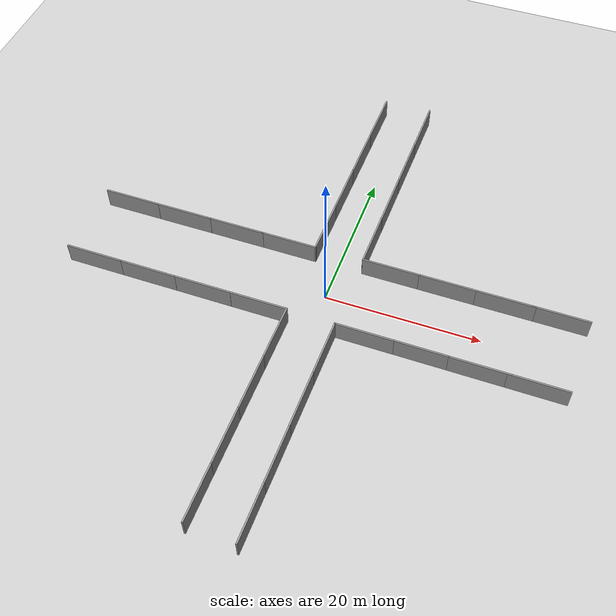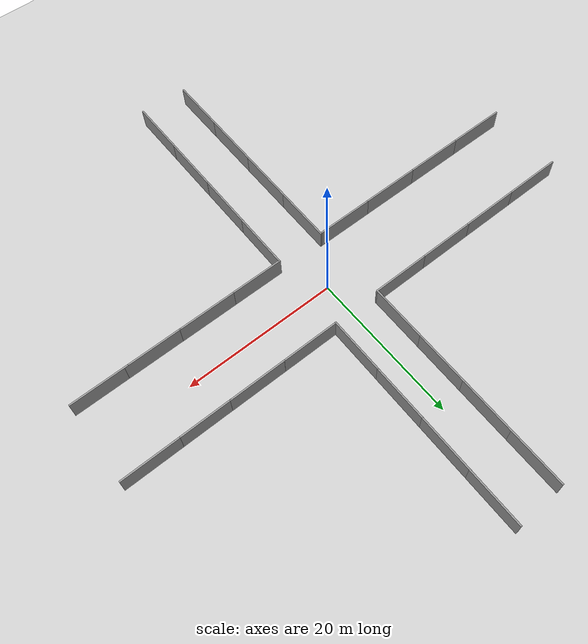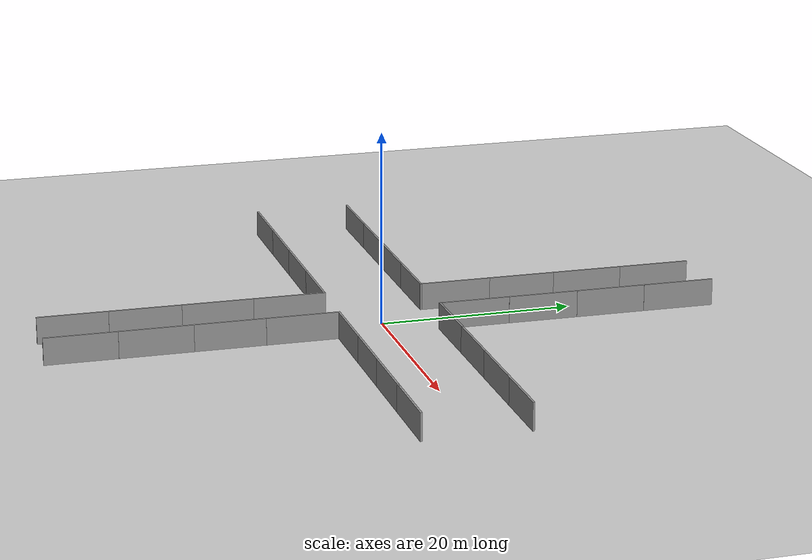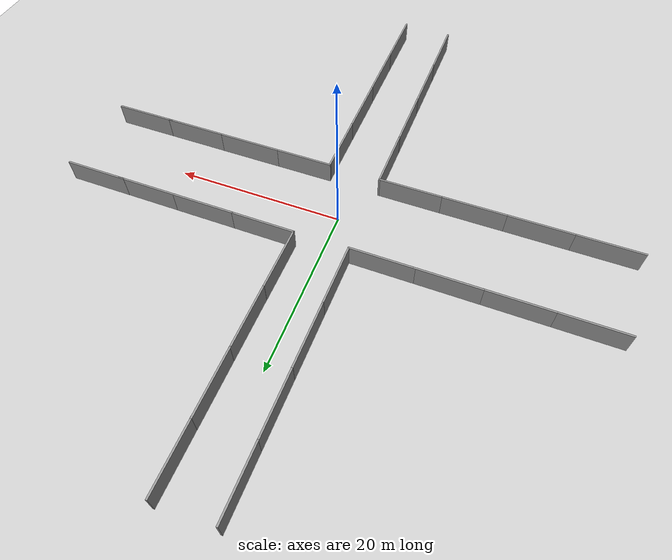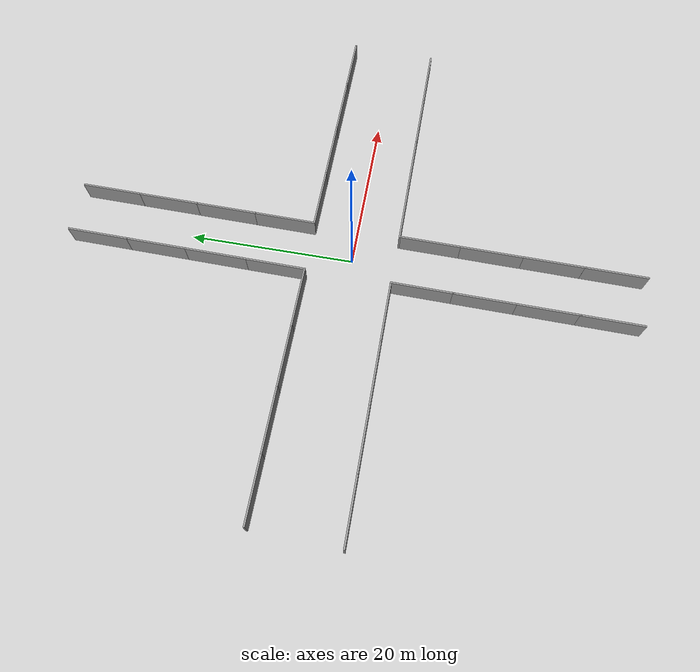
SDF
<sdf version="1.7">
 <world name="default">
  <light name="sun" type="directional">
   <pose>0 0 10 0 -0 0</pose>
   <diffuse>0.8 0.8 0.8 1</diffuse>
   <specular>0.2 0.2 0.2 1</specular>
   <attenuation>
    <range>1000</range>
    <constant>0.9</constant>
    <linear>0.01</linear>
    <quadratic>0.001</quadratic>
   </attenuation>
   <direction>-0.5 0.1 -0.9</direction>
   <spot><inner_angle>0</inner_angle><outer_angle>0</outer_angle><falloff>0</falloff></spot>
  </light>
  <model name="ground_plane">
   <static>1</static>
   <link name="link">
    <collision name="collision">
     <geometry><plane><normal>0 0 1</normal><size>100 100</size></plane></geometry>
     <surface>
      <contact><collide_bitmask>65535</collide_bitmask></contact>
      <friction><ode><mu>100</mu><mu2>50</mu2></ode></friction>
     </surface>
    </collision>
    <visual name="visual">
     <cast_shadows>0</cast_shadows>
     <geometry><plane><normal>0 0 1</normal><size>100 100</size></plane></geometry>
     <material>
      <script><uri>file://media/materials/scripts/gazebo.material</uri><name>Gazebo/Grey</name></script>
     </material>
    </visual>
   </link>
  </model>
  <gravity>0 0 -9.8</gravity>
  <magnetic_field>6e-06 2.3e-05 -4.2e-05</magnetic_field>
  <atmosphere type="adiabatic"/>
  <physics type="ode">
   <max_step_size>0.001</max_step_size>
   <real_time_factor>1</real_time_factor>
   <real_time_update_rate>1000</real_time_update_rate>
  </physics>
  <scene><ambient>0.4 0.4 0.4 1</ambient><background>0.7 0.7 0.7 1</background><shadows>1</shadows></scene>
  <spherical_coordinates>
   <surface_model>EARTH_WGS84</surface_model>
   <latitude_deg>0</latitude_deg>
   <longitude_deg>0</longitude_deg>
   <elevation>0</elevation>
   <heading_deg>0</heading_deg>
  </spherical_coordinates>
  <model name="grey_wall">
   <static>1</static>
   <link name="link">
    <pose>0 0 1.4 0 -0 0</pose>
    <collision name="collision"><geometry><box><size>7.5 0.2 2.8</size></box></geometry></collision>
    <visual name="visual">
     <cast_shadows>0</cast_shadows>
     <geometry><box><size>7.5 0.2 2.8</size></box></geometry>
     <material>
      <script>
       <uri>model://grey_wall/materials/scripts</uri>
       <uri>model://grey_wall/materials/textures</uri>
       <name>vrc/grey_wall</name>
      </script>
     </material>
    </visual>
   </link>
   <pose>6.80845 5.23595 0 0 -0 0</pose>
  </model>
  <model name="grey_wall_clone">
   <static>1</static>
   <link name="link">
    <pose>0 0 1.4 0 -0 0</pose>
    <collision name="collision"><geometry><box><size>7.5 0.2 2.8</size></box></geometry></collision>
    <visual name="visual">
     <cast_shadows>0</cast_shadows>
     <geometry><box><size>7.5 0.2 2.8</size></box></geometry>
     <material>
      <script>
       <uri>model://grey_wall/materials/scripts</uri>
       <uri>model://grey_wall/materials/textures</uri>
       <name>vrc/grey_wall</name>
      </script>
     </material>
    </visual>
   </link>
   <pose>14.1866 5.23301 0 0 -0 0</pose>
  </model>
  <model name="grey_wall_clone_0">
   <static>1</static>
   <link name="link">
    <pose>0 0 1.4 0 -0 0</pose>
    <collision name="collision"><geometry><box><size>7.5 0.2 2.8</size></box></geometry></collision>
    <visual name="visual">
     <cast_shadows>0</cast_shadows>
     <geometry><box><size>7.5 0.2 2.8</size></box></geometry>
     <material>
      <script>
       <uri>model://grey_wall/materials/scripts</uri>
       <uri>model://grey_wall/materials/textures</uri>
       <name>vrc/grey_wall</name>
      </script>
     </material>
    </visual>
   </link>
   <pose>21.4468 5.22567 0 0 -0 0</pose>
  </model>
  <model name="grey_wall_clone_1">
   <static>1</static>
   <link name="link">
    <pose>0 0 1.4 0 -0 0</pose>
    <collision name="collision"><geometry><box><size>7.5 0.2 2.8</size></box></geometry></collision>
    <visual name="visual">
     <cast_shadows>0</cast_shadows>
     <geometry><box><size>7.5 0.2 2.8</size></box></geometry>
     <material>
      <script>
       <uri>model://grey_wall/materials/scripts</uri>
       <uri>model://grey_wall/materials/textures</uri>
       <name>vrc/grey_wall</name>
      </script>
     </material>
    </visual>
   </link>
   <pose>6.69688 -5.26146 0 0 -0 0</pose>
  </model>
  <model name="grey_wall_clone_2">
   <static>1</static>
   <link name="link">
    <pose>0 0 1.4 0 -0 0</pose>
    <collision name="collision"><geometry><box><size>7.5 0.2 2.8</size></box></geometry></collision>
    <visual name="visual">
     <cast_shadows>0</cast_shadows>
     <geometry><box><size>7.5 0.2 2.8</size></box></geometry>
     <material>
      <script>
       <uri>model://grey_wall/materials/scripts</uri>
       <uri>model://grey_wall/materials/textures</uri>
       <name>vrc/grey_wall</name>
      </script>
     </material>
    </visual>
   </link>
   <pose>13.519 -5.25643 0 0 -0 0</pose>
  </model>
  <model name="grey_wall_clone_3">
   <static>1</static>
   <link name="link">
    <pose>0 0 1.4 0 -0 0</pose>
    <collision name="collision"><geometry><box><size>7.5 0.2 2.8</size></box></geometry></collision>
    <visual name="visual">
     <cast_shadows>0</cast_shadows>
     <geometry><box><size>7.5 0.2 2.8</size></box></geometry>
     <material>
      <script>
       <uri>model://grey_wall/materials/scripts</uri>
       <uri>model://grey_wall/materials/textures</uri>
       <name>vrc/grey_wall</name>
      </script>
     </material>
    </visual>
   </link>
   <pose>20.8261 -5.26477 0 0 -0 0</pose>
  </model>
  <model name="grey_wall_clone_4">
   <static>1</static>
   <link name="link">
    <pose>0 0 1.4 0 -0 0</pose>
    <collision name="collision"><geometry><box><size>7.5 0.2 2.8</size></box></geometry></collision>
    <visual name="visual">
     <cast_shadows>0</cast_shadows>
     <geometry><box><size>7.5 0.2 2.8</size></box></geometry>
     <material>
      <script>
       <uri>model://grey_wall/materials/scripts</uri>
       <uri>model://grey_wall/materials/textures</uri>
       <name>vrc/grey_wall</name>
      </script>
     </material>
    </visual>
   </link>
   <pose>3.02003 -8.96047 0 0 -0 1.56079</pose>
  </model>
  <model name="grey_wall_clone_4_clone">
   <static>1</static>
   <link name="link">
    <pose>0 0 1.4 0 -0 0</pose>
    <collision name="collision"><geometry><box><size>7.5 0.2 2.8</size></box></geometry></collision>
    <visual name="visual">
     <cast_shadows>0</cast_shadows>
     <geometry><box><size>7.5 0.2 2.8</size></box></geometry>
     <material>
      <script>
       <uri>model://grey_wall/materials/scripts</uri>
       <uri>model://grey_wall/materials/textures</uri>
       <name>vrc/grey_wall</name>
      </script>
     </material>
    </visual>
   </link>
   <pose>2.94297 -16.3707 0 0 -0 1.56079</pose>
  </model>
  <model name="grey_wall_clone_4_clone_0">
   <static>1</static>
   <link name="link">
    <pose>0 0 1.4 0 -0 0</pose>
    <collision name="collision"><geometry><box><size>7.5 0.2 2.8</size></box></geometry></collision>
    <visual name="visual">
     <cast_shadows>0</cast_shadows>
     <geometry><box><size>7.5 0.2 2.8</size></box></geometry>
     <material>
      <script>
       <uri>model://grey_wall/materials/scripts</uri>
       <uri>model://grey_wall/materials/textures</uri>
       <name>vrc/grey_wall</name>
      </script>
     </material>
    </visual>
   </link>
   <pose>2.87951 -23.7158 0 0 -0 1.56079</pose>
  </model>
  <model name="grey_wall_clone_4_clone_1">
   <static>1</static>
   <link name="link">
    <pose>0 0 1.4 0 -0 0</pose>
    <collision name="collision"><geometry><box><size>7.5 0.2 2.8</size></box></geometry></collision>
    <visual name="visual">
     <cast_shadows>0</cast_shadows>
     <geometry><box><size>7.5 0.2 2.8</size></box></geometry>
     <material>
      <script>
       <uri>model://grey_wall/materials/scripts</uri>
       <uri>model://grey_wall/materials/textures</uri>
       <name>vrc/grey_wall</name>
      </script>
     </material>
    </visual>
   </link>
   <pose>2.80142 -31.0909 0 0 -0 1.56079</pose>
  </model>
  <model name="grey_wall_clone_4_clone_2">
   <static>1</static>
   <link name="link">
    <pose>0 0 1.4 0 -0 0</pose>
    <collision name="collision"><geometry><box><size>7.5 0.2 2.8</size></box></geometry></collision>
    <visual name="visual">
     <cast_shadows>0</cast_shadows>
     <geometry><box><size>7.5 0.2 2.8</size></box></geometry>
     <material>
      <script>
       <uri>model://grey_wall/materials/scripts</uri>
       <uri>model://grey_wall/materials/textures</uri>
       <name>vrc/grey_wall</name>
      </script>
     </material>
    </visual>
   </link>
   <pose>3.17287 8.88911 0 0 -0 1.56079</pose>
  </model>
  <model name="grey_wall_clone_4_clone_3">
   <static>1</static>
   <link name="link">
    <pose>0 0 1.4 0 -0 0</pose>
    <collision name="collision"><geometry><box><size>7.5 0.2 2.8</size></box></geometry></collision>
    <visual name="visual">
     <cast_shadows>0</cast_shadows>
     <geometry><box><size>7.5 0.2 2.8</size></box></geometry>
     <material>
      <script>
       <uri>model://grey_wall/materials/scripts</uri>
       <uri>model://grey_wall/materials/textures</uri>
       <name>vrc/grey_wall</name>
      </script>
     </material>
    </visual>
   </link>
   <pose>3.2574 16.2734 0 0 -0 1.56079</pose>
  </model>
  <model name="grey_wall_clone_4_clone_4">
   <static>1</static>
   <link name="link">
    <pose>0 0 1.4 0 -0 0</pose>
    <collision name="collision"><geometry><box><size>7.5 0.2 2.8</size></box></geometry></collision>
    <visual name="visual">
     <cast_shadows>0</cast_shadows>
     <geometry><box><size>7.5 0.2 2.8</size></box></geometry>
     <material>
      <script>
       <uri>model://grey_wall/materials/scripts</uri>
       <uri>model://grey_wall/materials/textures</uri>
       <name>vrc/grey_wall</name>
      </script>
     </material>
    </visual>
   </link>
   <pose>3.33423 23.5562 0 0 -0 1.56079</pose>
  </model>
  <model name="grey_wall_clone_4_clone_5">
   <static>1</static>
   <link name="link">
    <pose>0 0 1.4 0 -0 0</pose>
    <collision name="collision"><geometry><box><size>7.5 0.2 2.8</size></box></geometry></collision>
    <visual name="visual">
     <cast_shadows>0</cast_shadows>
     <geometry><box><size>7.5 0.2 2.8</size></box></geometry>
     <material>
      <script>
       <uri>model://grey_wall/materials/scripts</uri>
       <uri>model://grey_wall/materials/textures</uri>
       <name>vrc/grey_wall</name>
      </script>
     </material>
    </visual>
   </link>
   <pose>3.4155 30.8283 0 0 -0 1.56079</pose>
  </model>
  <model name="grey_wall_clone_4_clone_6">
   <static>1</static>
   <link name="link">
    <pose>0 0 1.4 0 -0 0</pose>
    <collision name="collision"><geometry><box><size>7.5 0.2 2.8</size></box></geometry></collision>
    <visual name="visual">
     <cast_shadows>0</cast_shadows>
     <geometry><box><size>7.5 0.2 2.8</size></box></geometry>
     <material>
      <script>
       <uri>model://grey_wall/materials/scripts</uri>
       <uri>model://grey_wall/materials/textures</uri>
       <name>vrc/grey_wall</name>
      </script>
     </material>
    </visual>
   </link>
   <pose>-3.15343 8.74962 0 0 -0 1.56079</pose>
  </model>
  <model name="grey_wall_clone_4_clone_7">
   <static>1</static>
   <link name="link">
    <pose>0 0 1.4 0 -0 0</pose>
    <collision name="collision"><geometry><box><size>7.5 0.2 2.8</size></box></geometry></collision>
    <visual name="visual">
     <cast_shadows>0</cast_shadows>
     <geometry><box><size>7.5 0.2 2.8</size></box></geometry>
     <material>
      <script>
       <uri>model://grey_wall/materials/scripts</uri>
       <uri>model://grey_wall/materials/textures</uri>
       <name>vrc/grey_wall</name>
      </script>
     </material>
    </visual>
   </link>
   <pose>-3.08166 15.9727 0 0 -0 1.56079</pose>
  </model>
  <model name="grey_wall_clone_4_clone_8">
   <static>1</static>
   <link name="link">
    <pose>0 0 1.4 0 -0 0</pose>
    <collision name="collision"><geometry><box><size>7.5 0.2 2.8</size></box></geometry></collision>
    <visual name="visual">
     <cast_shadows>0</cast_shadows>
     <geometry><box><size>7.5 0.2 2.8</size></box></geometry>
     <material>
      <script>
       <uri>model://grey_wall/materials/scripts</uri>
       <uri>model://grey_wall/materials/textures</uri>
       <name>vrc/grey_wall</name>
      </script>
     </material>
    </visual>
   </link>
   <pose>-3.00818 23.2296 0 0 -0 1.56079</pose>
  </model>
  <model name="grey_wall_clone_4_clone_9">
   <static>1</static>
   <link name="link">
    <pose>0 0 1.4 0 -0 0</pose>
    <collision name="collision"><geometry><box><size>7.5 0.2 2.8</size></box></geometry></collision>
    <visual name="visual">
     <cast_shadows>0</cast_shadows>
     <geometry><box><size>7.5 0.2 2.8</size></box></geometry>
     <material>
      <script>
       <uri>model://grey_wall/materials/scripts</uri>
       <uri>model://grey_wall/materials/textures</uri>
       <name>vrc/grey_wall</name>
      </script>
     </material>
    </visual>
   </link>
   <pose>-2.93216 30.5916 0 0 -0 1.56079</pose>
  </model>
  <model name="grey_wall_clone_4_clone_10">
   <static>1</static>
   <link name="link">
    <pose>0 0 1.4 0 -0 0</pose>
    <collision name="collision"><geometry><box><size>7.5 0.2 2.8</size></box></geometry></collision>
    <visual name="visual">
     <cast_shadows>0</cast_shadows>
     <geometry><box><size>7.5 0.2 2.8</size></box></geometry>
     <material>
      <script>
       <uri>model://grey_wall/materials/scripts</uri>
       <uri>model://grey_wall/materials/textures</uri>
       <name>vrc/grey_wall</name>
      </script>
     </material>
    </visual>
   </link>
   <pose>-3.18334 -8.81888 0 0 -0 1.56079</pose>
  </model>
  <model name="grey_wall_clone_4_clone_11">
   <static>1</static>
   <link name="link">
    <pose>0 0 1.4 0 -0 0</pose>
    <collision name="collision"><geometry><box><size>7.5 0.2 2.8</size></box></geometry></collision>
    <visual name="visual">
     <cast_shadows>0</cast_shadows>
     <geometry><box><size>7.5 0.2 2.8</size></box></geometry>
     <material>
      <script>
       <uri>model://grey_wall/materials/scripts</uri>
       <uri>model://grey_wall/materials/textures</uri>
       <name>vrc/grey_wall</name>
      </script>
     </material>
    </visual>
   </link>
   <pose>-3.26156 -16.1615 0 0 -0 1.56079</pose>
  </model>
  <model name="grey_wall_clone_4_clone_12">
   <static>1</static>
   <link name="link">
    <pose>0 0 1.4 0 -0 0</pose>
    <collision name="collision"><geometry><box><size>7.5 0.2 2.8</size></box></geometry></collision>
    <visual name="visual">
     <cast_shadows>0</cast_shadows>
     <geometry><box><size>7.5 0.2 2.8</size></box></geometry>
     <material>
      <script>
       <uri>model://grey_wall/materials/scripts</uri>
       <uri>model://grey_wall/materials/textures</uri>
       <name>vrc/grey_wall</name>
      </script>
     </material>
    </visual>
   </link>
   <pose>-3.33675 -23.5853 0 0 -0 1.56079</pose>
  </model>
  <model name="grey_wall_clone_4_clone_13">
   <static>1</static>
   <link name="link">
    <pose>0 0 1.4 0 -0 0</pose>
    <collision name="collision"><geometry><box><size>7.5 0.2 2.8</size></box></geometry></collision>
    <visual name="visual">
     <cast_shadows>0</cast_shadows>
     <geometry><box><size>7.5 0.2 2.8</size></box></geometry>
     <material>
      <script>
       <uri>model://grey_wall/materials/scripts</uri>
       <uri>model://grey_wall/materials/textures</uri>
       <name>vrc/grey_wall</name>
      </script>
     </material>
    </visual>
   </link>
   <pose>-3.41164 -30.7992 0 0 -0 1.56079</pose>
  </model>
  <model name="grey_wall_clone_5">
   <static>1</static>
   <link name="link">
    <pose>0 0 1.4 0 -0 0</pose>
    <collision name="collision"><geometry><box><size>7.5 0.2 2.8</size></box></geometry></collision>
    <visual name="visual">
     <cast_shadows>0</cast_shadows>
     <geometry><box><size>7.5 0.2 2.8</size></box></geometry>
     <material>
      <script>
       <uri>model://grey_wall/materials/scripts</uri>
       <uri>model://grey_wall/materials/textures</uri>
       <name>vrc/grey_wall</name>
      </script>
     </material>
    </visual>
   </link>
   <pose>-6.83275 5.10008 0 0 -0 0</pose>
  </model>
  <model name="grey_wall_clone_6">
   <static>1</static>
   <link name="link">
    <pose>0 0 1.4 0 -0 0</pose>
    <collision name="collision"><geometry><box><size>7.5 0.2 2.8</size></box></geometry></collision>
    <visual name="visual">
     <cast_shadows>0</cast_shadows>
     <geometry><box><size>7.5 0.2 2.8</size></box></geometry>
     <material>
      <script>
       <uri>model://grey_wall/materials/scripts</uri>
       <uri>model://grey_wall/materials/textures</uri>
       <name>vrc/grey_wall</name>
      </script>
     </material>
    </visual>
   </link>
   <pose>-14.0499 5.09782 0 0 -0 0</pose>
  </model>
  <model name="grey_wall_clone_7">
   <static>1</static>
   <link name="link">
    <pose>0 0 1.4 0 -0 0</pose>
    <collision name="collision"><geometry><box><size>7.5 0.2 2.8</size></box></geometry></collision>
    <visual name="visual">
     <cast_shadows>0</cast_shadows>
     <geometry><box><size>7.5 0.2 2.8</size></box></geometry>
     <material>
      <script>
       <uri>model://grey_wall/materials/scripts</uri>
       <uri>model://grey_wall/materials/textures</uri>
       <name>vrc/grey_wall</name>
      </script>
     </material>
    </visual>
   </link>
   <pose>-21.386 5.09614 0 0 -0 0</pose>
  </model>
  <model name="grey_wall_clone_8">
   <static>1</static>
   <link name="link">
    <pose>0 0 1.4 0 -0 0</pose>
    <collision name="collision"><geometry><box><size>7.5 0.2 2.8</size></box></geometry></collision>
    <visual name="visual">
     <cast_shadows>0</cast_shadows>
     <geometry><box><size>7.5 0.2 2.8</size></box></geometry>
     <material>
      <script>
       <uri>model://grey_wall/materials/scripts</uri>
       <uri>model://grey_wall/materials/textures</uri>
       <name>vrc/grey_wall</name>
      </script>
     </material>
    </visual>
   </link>
   <pose>-28.8269 5.09489 0 0 -0 0</pose>
  </model>
  <model name="grey_wall_clone_9">
   <static>1</static>
   <link name="link">
    <pose>0 0 1.4 0 -0 0</pose>
    <collision name="collision"><geometry><box><size>7.5 0.2 2.8</size></box></geometry></collision>
    <visual name="visual">
     <cast_shadows>0</cast_shadows>
     <geometry><box><size>7.5 0.2 2.8</size></box></geometry>
     <material>
      <script>
       <uri>model://grey_wall/materials/scripts</uri>
       <uri>model://grey_wall/materials/textures</uri>
       <name>vrc/grey_wall</name>
      </script>
     </material>
    </visual>
   </link>
   <pose>-6.84663 -5.17264 0 0 -0 0</pose>
  </model>
  <model name="grey_wall_clone_10">
   <static>1</static>
   <link name="link">
    <pose>0 0 1.4 0 -0 0</pose>
    <collision name="collision"><geometry><box><size>7.5 0.2 2.8</size></box></geometry></collision>
    <visual name="visual">
     <cast_shadows>0</cast_shadows>
     <geometry><box><size>7.5 0.2 2.8</size></box></geometry>
     <material>
      <script>
       <uri>model://grey_wall/materials/scripts</uri>
       <uri>model://grey_wall/materials/textures</uri>
       <name>vrc/grey_wall</name>
      </script>
     </material>
    </visual>
   </link>
   <pose>-14.2641 -5.17739 0 0 -0 0</pose>
  </model>
  <model name="grey_wall_clone_11">
   <static>1</static>
   <link name="link">
    <pose>0 0 1.4 0 -0 0</pose>
    <collision name="collision"><geometry><box><size>7.5 0.2 2.8</size></box></geometry></collision>
    <visual name="visual">
     <cast_shadows>0</cast_shadows>
     <geometry><box><size>7.5 0.2 2.8</size></box></geometry>
     <material>
      <script>
       <uri>model://grey_wall/materials/scripts</uri>
       <uri>model://grey_wall/materials/textures</uri>
       <name>vrc/grey_wall</name>
      </script>
     </material>
    </visual>
   </link>
   <pose>-21.6972 -5.18357 0 0 -0 0</pose>
  </model>
  <model name="grey_wall_clone_12">
   <static>1</static>
   <link name="link">
    <pose>0 0 1.4 0 -0 0</pose>
    <collision name="collision"><geometry><box><size>7.5 0.2 2.8</size></box></geometry></collision>
    <visual name="visual">
     <cast_shadows>0</cast_shadows>
     <geometry><box><size>7.5 0.2 2.8</size></box></geometry>
     <material>
      <script>
       <uri>model://grey_wall/materials/scripts</uri>
       <uri>model://grey_wall/materials/textures</uri>
       <name>vrc/grey_wall</name>
      </script>
     </material>
    </visual>
   </link>
   <pose>-29.1329 -5.18631 0 0 -0 0</pose>
  </model>
  <model name="grey_wall_clone_13">
   <static>1</static>
   <link name="link">
    <pose>0 0 1.4 0 -0 0</pose>
    <collision name="collision"><geometry><box><size>7.5 0.2 2.8</size></box></geometry></collision>
    <visual name="visual">
     <cast_shadows>0</cast_shadows>
     <geometry><box><size>7.5 0.2 2.8</size></box></geometry>
     <material>
      <script>
       <uri>model://grey_wall/materials/scripts</uri>
       <uri>model://grey_wall/materials/textures</uri>
       <name>vrc/grey_wall</name>
      </script>
     </material>
    </visual>
   </link>
   <pose>27.8326 -5.26692 0 0 -0 0</pose>
  </model>
  <model name="grey_wall_clone_14">
   <static>1</static>
   <link name="link">
    <pose>0 0 1.4 0 -0 0</pose>
    <collision name="collision"><geometry><box><size>7.5 0.2 2.8</size></box></geometry></collision>
    <visual name="visual">
     <cast_shadows>0</cast_shadows>
     <geometry><box><size>7.5 0.2 2.8</size></box></geometry>
     <material>
      <script>
       <uri>model://grey_wall/materials/scripts</uri>
       <uri>model://grey_wall/materials/textures</uri>
       <name>vrc/grey_wall</name>
      </script>
     </material>
    </visual>
   </link>
   <pose>28.1774 5.2265 0 0 -0 0</pose>
  </model>
 </world>
</sdf>
